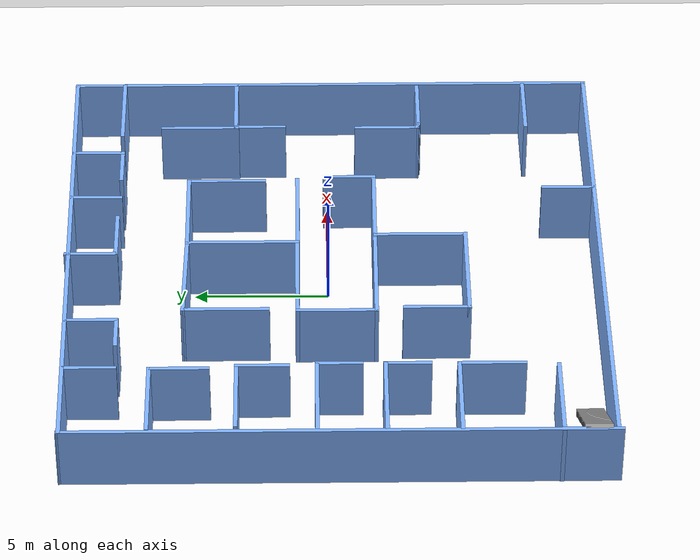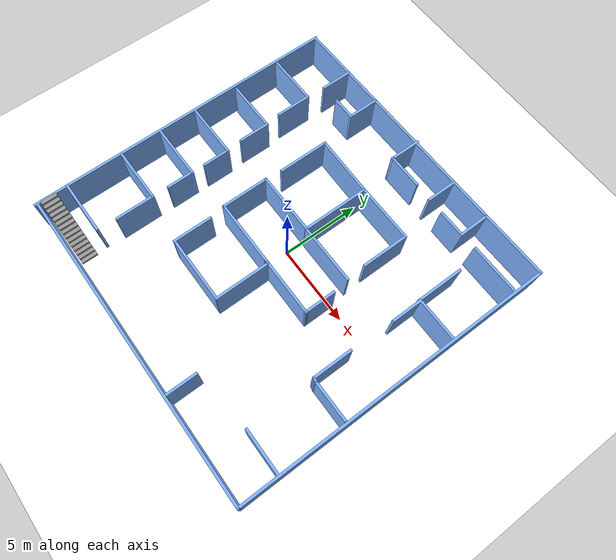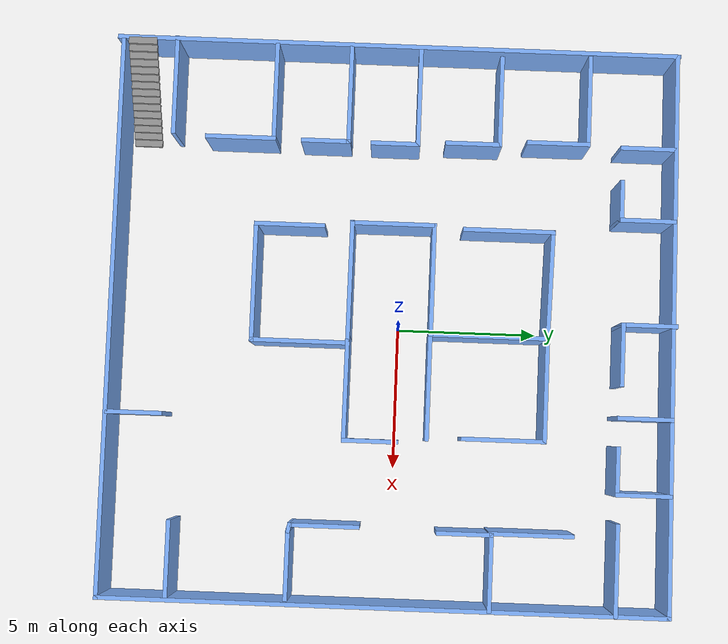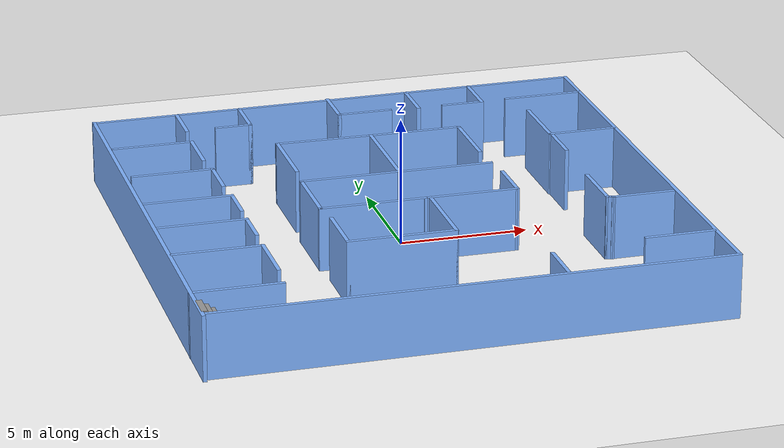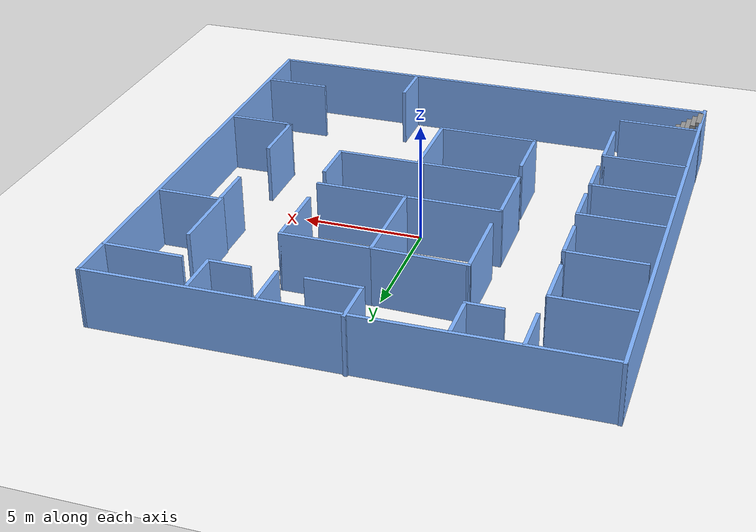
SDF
<sdf version="1.9">
 <world name="hospital">
  <model name="ground_plane">
   <static>true</static>
   <link name="link">
    <collision name="collision">
     <geometry><plane><normal>0 0 1</normal><size>100 100</size></plane></geometry>
     <surface><friction><ode><mu>100</mu><mu2>50</mu2></ode></friction></surface>
    </collision>
    <visual name="visual">
     <cast_shadows>false</cast_shadows>
     <geometry><plane><normal>0 0 1</normal><size>100 100</size></plane></geometry>
     <material><ambient>1 1 1 1</ambient><diffuse>1 1 1 1</diffuse></material>
    </visual>
    <inertial>
     <mass>1</mass>
     <inertia><ixx>1</ixx><ixy>0</ixy><ixz>0</ixz><iyy>1</iyy><iyz>0</iyz><izz>1</izz></inertia>
    </inertial>
   </link>
  </model>
  <model name="hospital_building">
   <pose>-0.088547 -0.253566 0 0 -0 0</pose>
   <link name="Stairs_0">
    <visual name="Stairs_0_Visual_0">
     <pose>-6.49211 -9.17922 0.083333 0 -0 -1.5708</pose>
     <geometry><box><size>1 0.232161 0.166667</size></box></geometry>
     <material>
      <script><uri>file://media/materials/scripts/gazebo.material</uri><name>Gazebo/Grey</name></script>
      <ambient>1 1 1 1</ambient>
     </material>
     <meta><layer>0</layer></meta>
    </visual>
    <collision name="Stairs_0_Collision_0">
     <geometry><box><size>1 0.232161 0.166667</size></box></geometry>
     <pose>-6.49211 -9.17922 0.083333 0 -0 -1.5708</pose>
    </collision>
    <visual name="Stairs_0_Visual_1">
     <pose>-6.72427 -9.17922 0.25 0 -0 -1.5708</pose>
     <geometry><box><size>1 0.232161 0.166667</size></box></geometry>
     <material>
      <script><uri>file://media/materials/scripts/gazebo.material</uri><name>Gazebo/Grey</name></script>
      <ambient>1 1 1 1</ambient>
     </material>
     <meta><layer>0</layer></meta>
    </visual>
    <collision name="Stairs_0_Collision_1">
     <geometry><box><size>1 0.232161 0.166667</size></box></geometry>
     <pose>-6.72427 -9.17922 0.25 0 -0 -1.5708</pose>
    </collision>
    <visual name="Stairs_0_Visual_2">
     <pose>-6.95643 -9.17922 0.416667 0 -0 -1.5708</pose>
     <geometry><box><size>1 0.232161 0.166667</size></box></geometry>
     <material>
      <script><uri>file://media/materials/scripts/gazebo.material</uri><name>Gazebo/Grey</name></script>
      <ambient>1 1 1 1</ambient>
     </material>
     <meta><layer>0</layer></meta>
    </visual>
    <collision name="Stairs_0_Collision_2">
     <geometry><box><size>1 0.232161 0.166667</size></box></geometry>
     <pose>-6.95643 -9.17922 0.416667 0 -0 -1.5708</pose>
    </collision>
    <visual name="Stairs_0_Visual_3">
     <pose>-7.18859 -9.17922 0.583333 0 -0 -1.5708</pose>
     <geometry><box><size>1 0.232161 0.166667</size></box></geometry>
     <material>
      <script><uri>file://media/materials/scripts/gazebo.material</uri><name>Gazebo/Grey</name></script>
      <ambient>1 1 1 1</ambient>
     </material>
     <meta><layer>0</layer></meta>
    </visual>
    <collision name="Stairs_0_Collision_3">
     <geometry><box><size>1 0.232161 0.166667</size></box></geometry>
     <pose>-7.18859 -9.17922 0.583333 0 -0 -1.5708</pose>
    </collision>
    <visual name="Stairs_0_Visual_4">
     <pose>-7.42075 -9.17922 0.75 0 -0 -1.5708</pose>
     <geometry><box><size>1 0.232161 0.166667</size></box></geometry>
     <material>
      <script><uri>file://media/materials/scripts/gazebo.material</uri><name>Gazebo/Grey</name></script>
      <ambient>1 1 1 1</ambient>
     </material>
     <meta><layer>0</layer></meta>
    </visual>
    <collision name="Stairs_0_Collision_4">
     <geometry><box><size>1 0.232161 0.166667</size></box></geometry>
     <pose>-7.42075 -9.17922 0.75 0 -0 -1.5708</pose>
    </collision>
    <visual name="Stairs_0_Visual_5">
     <pose>-7.65291 -9.17922 0.916667 0 -0 -1.5708</pose>
     <geometry><box><size>1 0.232161 0.166667</size></box></geometry>
     <material>
      <script><uri>file://media/materials/scripts/gazebo.material</uri><name>Gazebo/Grey</name></script>
      <ambient>1 1 1 1</ambient>
     </material>
     <meta><layer>0</layer></meta>
    </visual>
    <collision name="Stairs_0_Collision_5">
     <geometry><box><size>1 0.232161 0.166667</size></box></geometry>
     <pose>-7.65291 -9.17922 0.916667 0 -0 -1.5708</pose>
    </collision>
    <visual name="Stairs_0_Visual_6">
     <pose>-7.88507 -9.17922 1.08333 0 -0 -1.5708</pose>
     <geometry><box><size>1 0.232161 0.166667</size></box></geometry>
     <material>
      <script><uri>file://media/materials/scripts/gazebo.material</uri><name>Gazebo/Grey</name></script>
      <ambient>1 1 1 1</ambient>
     </material>
     <meta><layer>0</layer></meta>
    </visual>
    <collision name="Stairs_0_Collision_6">
     <geometry><box><size>1 0.232161 0.166667</size></box></geometry>
     <pose>-7.88507 -9.17922 1.08333 0 -0 -1.5708</pose>
    </collision>
    <visual name="Stairs_0_Visual_7">
     <pose>-8.11724 -9.17922 1.25 0 -0 -1.5708</pose>
     <geometry><box><size>1 0.232161 0.166667</size></box></geometry>
     <material>
      <script><uri>file://media/materials/scripts/gazebo.material</uri><name>Gazebo/Grey</name></script>
      <ambient>1 1 1 1</ambient>
     </material>
     <meta><layer>0</layer></meta>
    </visual>
    <collision name="Stairs_0_Collision_7">
     <geometry><box><size>1 0.232161 0.166667</size></box></geometry>
     <pose>-8.11724 -9.17922 1.25 0 -0 -1.5708</pose>
    </collision>
    <visual name="Stairs_0_Visual_8">
     <pose>-8.3494 -9.17922 1.41667 0 -0 -1.5708</pose>
     <geometry><box><size>1 0.232161 0.166667</size></box></geometry>
     <material>
      <script><uri>file://media/materials/scripts/gazebo.material</uri><name>Gazebo/Grey</name></script>
      <ambient>1 1 1 1</ambient>
     </material>
     <meta><layer>0</layer></meta>
    </visual>
    <collision name="Stairs_0_Collision_8">
     <geometry><box><size>1 0.232161 0.166667</size></box></geometry>
     <pose>-8.3494 -9.17922 1.41667 0 -0 -1.5708</pose>
    </collision>
    <visual name="Stairs_0_Visual_9">
     <pose>-8.58156 -9.17922 1.58333 0 -0 -1.5708</pose>
     <geometry><box><size>1 0.232161 0.166667</size></box></geometry>
     <material>
      <script><uri>file://media/materials/scripts/gazebo.material</uri><name>Gazebo/Grey</name></script>
      <ambient>1 1 1 1</ambient>
     </material>
     <meta><layer>0</layer></meta>
    </visual>
    <collision name="Stairs_0_Collision_9">
     <geometry><box><size>1 0.232161 0.166667</size></box></geometry>
     <pose>-8.58156 -9.17922 1.58333 0 -0 -1.5708</pose>
    </collision>
    <visual name="Stairs_0_Visual_10">
     <pose>-8.81372 -9.17922 1.75 0 -0 -1.5708</pose>
     <geometry><box><size>1 0.232161 0.166667</size></box></geometry>
     <material>
      <script><uri>file://media/materials/scripts/gazebo.material</uri><name>Gazebo/Grey</name></script>
      <ambient>1 1 1 1</ambient>
     </material>
     <meta><layer>0</layer></meta>
    </visual>
    <collision name="Stairs_0_Collision_10">
     <geometry><box><size>1 0.232161 0.166667</size></box></geometry>
     <pose>-8.81372 -9.17922 1.75 0 -0 -1.5708</pose>
    </collision>
    <visual name="Stairs_0_Visual_11">
     <pose>-9.04588 -9.17922 1.91667 0 -0 -1.5708</pose>
     <geometry><box><size>1 0.232161 0.166667</size></box></geometry>
     <material>
      <script><uri>file://media/materials/scripts/gazebo.material</uri><name>Gazebo/Grey</name></script>
      <ambient>1 1 1 1</ambient>
     </material>
     <meta><layer>0</layer></meta>
    </visual>
    <collision name="Stairs_0_Collision_11">
     <geometry><box><size>1 0.232161 0.166667</size></box></geometry>
     <pose>-9.04588 -9.17922 1.91667 0 -0 -1.5708</pose>
    </collision>
    <visual name="Stairs_0_Visual_12">
     <pose>-9.27804 -9.17922 2.08333 0 -0 -1.5708</pose>
     <geometry><box><size>1 0.232161 0.166667</size></box></geometry>
     <material>
      <script><uri>file://media/materials/scripts/gazebo.material</uri><name>Gazebo/Grey</name></script>
      <ambient>1 1 1 1</ambient>
     </material>
     <meta><layer>0</layer></meta>
    </visual>
    <collision name="Stairs_0_Collision_12">
     <geometry><box><size>1 0.232161 0.166667</size></box></geometry>
     <pose>-9.27804 -9.17922 2.08333 0 -0 -1.5708</pose>
    </collision>
    <visual name="Stairs_0_Visual_13">
     <pose>-9.5102 -9.17922 2.25 0 -0 -1.5708</pose>
     <geometry><box><size>1 0.232161 0.166667</size></box></geometry>
     <material>
      <script><uri>file://media/materials/scripts/gazebo.material</uri><name>Gazebo/Grey</name></script>
      <ambient>1 1 1 1</ambient>
     </material>
     <meta><layer>0</layer></meta>
    </visual>
    <collision name="Stairs_0_Collision_13">
     <geometry><box><size>1 0.232161 0.166667</size></box></geometry>
     <pose>-9.5102 -9.17922 2.25 0 -0 -1.5708</pose>
    </collision>
    <visual name="Stairs_0_Visual_14">
     <pose>-9.74236 -9.17922 2.41667 0 -0 -1.5708</pose>
     <geometry><box><size>1 0.232161 0.166667</size></box></geometry>
     <material>
      <script><uri>file://media/materials/scripts/gazebo.material</uri><name>Gazebo/Grey</name></script>
      <ambient>1 1 1 1</ambient>
     </material>
     <meta><layer>0</layer></meta>
    </visual>
    <collision name="Stairs_0_Collision_14">
     <geometry><box><size>1 0.232161 0.166667</size></box></geometry>
     <pose>-9.74236 -9.17922 2.41667 0 -0 -1.5708</pose>
    </collision>
    <inertial>
     <mass>1</mass>
     <inertia><ixx>1</ixx><ixy>0</ixy><ixz>0</ixz><iyy>1</iyy><iyz>0</iyz><izz>1</izz></inertia>
    </inertial>
   </link>
   <link name="Wall_101">
    <collision name="Wall_101_Collision">
     <geometry><box><size>3 0.15 2.5</size></box></geometry>
     <pose>0 0 1.25 0 -0 0</pose>
    </collision>
    <visual name="Wall_101_Visual">
     <pose>0 0 1.25 0 -0 0</pose>
     <geometry><box><size>3 0.15 2.5</size></box></geometry>
     <material>
      <ambient>0.5 0.7 1 1</ambient>
      <diffuse>0.5 0.7 1 1</diffuse>
      <specular>0.2 0.2 0.25 1</specular>
     </material>
     <meta><layer>0</layer></meta>
    </visual>
    <pose>-3.51129 -0.021415 0 0 0 -1.5708</pose>
    <inertial>
     <mass>1</mass>
     <inertia><ixx>1</ixx><ixy>0</ixy><ixz>0</ixz><iyy>1</iyy><iyz>0</iyz><izz>1</izz></inertia>
    </inertial>
   </link>
   <link name="Wall_103">
    <collision name="Wall_103_Collision">
     <geometry><box><size>3.75103 0.15 2.5</size></box></geometry>
     <pose>0 0 1.25 0 -0 0</pose>
    </collision>
    <visual name="Wall_103_Visual">
     <pose>0 0 1.25 0 -0 0</pose>
     <geometry><box><size>3.75103 0.15 2.5</size></box></geometry>
     <material>
      <ambient>0.5 0.7 1 1</ambient>
      <diffuse>0.5 0.7 1 1</diffuse>
      <specular>0.2 0.2 0.25 1</specular>
     </material>
     <meta><layer>0</layer></meta>
    </visual>
    <pose>2.34123 -1.50562 0 0 0 -0.002751</pose>
    <inertial>
     <mass>1</mass>
     <inertia><ixx>1</ixx><ixy>0</ixy><ixz>0</ixz><iyy>1</iyy><iyz>0</iyz><izz>1</izz></inertia>
    </inertial>
   </link>
   <link name="Wall_104">
    <collision name="Wall_104_Collision">
     <geometry><box><size>2 0.15 2.5</size></box></geometry>
     <pose>0 0 1.25 0 -0 0</pose>
    </collision>
    <visual name="Wall_104_Visual">
     <pose>0 0 1.25 0 -0 0</pose>
     <geometry><box><size>2 0.15 2.5</size></box></geometry>
     <material>
      <ambient>0.5 0.7 1 1</ambient>
      <diffuse>0.5 0.7 1 1</diffuse>
      <specular>0.2 0.2 0.25 1</specular>
     </material>
     <meta><layer>0</layer></meta>
    </visual>
    <pose>4.14174 -0.585575 0 0 -0 1.5708</pose>
    <inertial>
     <mass>1</mass>
     <inertia><ixx>1</ixx><ixy>0</ixy><ixz>0</ixz><iyy>1</iyy><iyz>0</iyz><izz>1</izz></inertia>
    </inertial>
   </link>
   <link name="Wall_106">
    <collision name="Wall_106_Collision">
     <geometry><box><size>1.75 0.15 2.5</size></box></geometry>
     <pose>0 0 1.25 0 -0 0</pose>
    </collision>
    <visual name="Wall_106_Visual">
     <pose>0 0 1.25 0 -0 0</pose>
     <geometry><box><size>1.75 0.15 2.5</size></box></geometry>
     <material>
      <ambient>0.5 0.7 1 1</ambient>
      <diffuse>0.5 0.7 1 1</diffuse>
      <specular>0.2 0.2 0.25 1</specular>
     </material>
     <meta><layer>0</layer></meta>
    </visual>
    <pose>-6.38591 -2.54355 0 0 0 -1.5708</pose>
    <inertial>
     <mass>1</mass>
     <inertia><ixx>1</ixx><ixy>0</ixy><ixz>0</ixz><iyy>1</iyy><iyz>0</iyz><izz>1</izz></inertia>
    </inertial>
   </link>
   <link name="Wall_110">
    <collision name="Wall_110_Collision">
     <geometry><box><size>2 0.15 2.5</size></box></geometry>
     <pose>0 0 1.25 0 -0 0</pose>
    </collision>
    <visual name="Wall_110_Visual">
     <pose>0 0 1.25 0 -0 0</pose>
     <geometry><box><size>2 0.15 2.5</size></box></geometry>
     <material>
      <ambient>0.5 0.7 1 1</ambient>
      <diffuse>0.5 0.7 1 1</diffuse>
      <specular>0.2 0.2 0.25 1</specular>
     </material>
     <meta><layer>0</layer></meta>
    </visual>
    <pose>5.67844 9.00549 0 0 -0 1.5708</pose>
    <inertial>
     <mass>1</mass>
     <inertia><ixx>1</ixx><ixy>0</ixy><ixz>0</ixz><iyy>1</iyy><iyz>0</iyz><izz>1</izz></inertia>
    </inertial>
   </link>
   <link name="Wall_112">
    <collision name="Wall_112_Collision">
     <geometry><box><size>3.5 0.15 2.5</size></box></geometry>
     <pose>0 0 1.25 0 -0 0</pose>
    </collision>
    <visual name="Wall_112_Visual">
     <pose>0 0 1.25 0 -0 0</pose>
     <geometry><box><size>3.5 0.15 2.5</size></box></geometry>
     <material>
      <ambient>0.5 0.7 1 1</ambient>
      <diffuse>0.5 0.7 1 1</diffuse>
      <specular>0.2 0.2 0.25 1</specular>
     </material>
     <meta><layer>0</layer></meta>
    </visual>
    <pose>0.73884 -3.1988 0 0 -0 1.5708</pose>
    <inertial>
     <mass>1</mass>
     <inertia><ixx>1</ixx><ixy>0</ixy><ixz>0</ixz><iyy>1</iyy><iyz>0</iyz><izz>1</izz></inertia>
    </inertial>
   </link>
   <link name="Wall_12">
    <collision name="Wall_12_Collision">
     <geometry><box><size>20 0.15 2.5</size></box></geometry>
     <pose>0 0 1.25 0 -0 0</pose>
    </collision>
    <visual name="Wall_12_Visual">
     <pose>0 0 1.25 0 -0 0</pose>
     <geometry><box><size>20 0.15 2.5</size></box></geometry>
     <material>
      <ambient>0.5 0.7 1 1</ambient>
      <diffuse>0.5 0.7 1 1</diffuse>
      <specular>0.2 0.2 0.25 1</specular>
     </material>
     <meta><layer>0</layer></meta>
    </visual>
    <pose>-9.86242 -0.07017 0 0 -0 1.5708</pose>
    <inertial>
     <mass>1</mass>
     <inertia><ixx>1</ixx><ixy>0</ixy><ixz>0</ixz><iyy>1</iyy><iyz>0</iyz><izz>1</izz></inertia>
    </inertial>
   </link>
   <link name="Wall_13">
    <collision name="Wall_13_Collision">
     <geometry><box><size>19.8871 0.15 2.5</size></box></geometry>
     <pose>0 0 1.25 0 -0 0</pose>
    </collision>
    <visual name="Wall_13_Visual">
     <pose>0 0 1.25 0 -0 0</pose>
     <geometry><box><size>19.8871 0.15 2.5</size></box></geometry>
     <material>
      <ambient>0.5 0.7 1 1</ambient>
      <diffuse>0.5 0.7 1 1</diffuse>
      <specular>0.2 0.2 0.25 1</specular>
     </material>
     <meta><layer>0</layer></meta>
    </visual>
    <pose>0.005865 9.90334 0 0 -0 0.009016</pose>
    <inertial>
     <mass>1</mass>
     <inertia><ixx>1</ixx><ixy>0</ixy><ixz>0</ixz><iyy>1</iyy><iyz>0</iyz><izz>1</izz></inertia>
    </inertial>
   </link>
   <link name="Wall_16">
    <collision name="Wall_16_Collision">
     <geometry><box><size>20 0.15 2.5</size></box></geometry>
     <pose>0 0 1.25 0 -0 0</pose>
    </collision>
    <visual name="Wall_16_Visual">
     <pose>0 0 1.25 0 -0 0</pose>
     <geometry><box><size>20 0.15 2.5</size></box></geometry>
     <material>
      <ambient>0.5 0.7 1 1</ambient>
      <diffuse>0.5 0.7 1 1</diffuse>
      <specular>0.2 0.2 0.25 1</specular>
     </material>
     <meta><layer>0</layer></meta>
    </visual>
    <pose>9.87415 0.067315 0 0 0 -1.5708</pose>
    <inertial>
     <mass>1</mass>
     <inertia><ixx>1</ixx><ixy>0</ixy><ixz>0</ixz><iyy>1</iyy><iyz>0</iyz><izz>1</izz></inertia>
    </inertial>
   </link>
   <link name="Wall_17">
    <collision name="Wall_17_Collision">
     <geometry><box><size>19.75 0.15 2.5</size></box></geometry>
     <pose>0 0 1.25 0 -0 0</pose>
    </collision>
    <visual name="Wall_17_Visual">
     <pose>0 0 1.25 0 -0 0</pose>
     <geometry><box><size>19.75 0.15 2.5</size></box></geometry>
     <material>
      <ambient>0.5 0.7 1 1</ambient>
      <diffuse>0.5 0.7 1 1</diffuse>
      <specular>0.2 0.2 0.25 1</specular>
     </material>
     <meta><layer>0</layer></meta>
    </visual>
    <pose>0.074153 -9.85769 0 0 -0 3.14159</pose>
    <inertial>
     <mass>1</mass>
     <inertia><ixx>1</ixx><ixy>0</ixy><ixz>0</ixz><iyy>1</iyy><iyz>0</iyz><izz>1</izz></inertia>
    </inertial>
   </link>
   <link name="Wall_19">
    <collision name="Wall_19_Collision">
     <geometry><box><size>3.5 0.15 2.5</size></box></geometry>
     <pose>0 0 1.25 0 -0 0</pose>
    </collision>
    <visual name="Wall_19_Visual">
     <pose>0 0 1.25 0 -0 0</pose>
     <geometry><box><size>3.5 0.15 2.5</size></box></geometry>
     <material>
      <ambient>0.5 0.7 1 1</ambient>
      <diffuse>0.5 0.7 1 1</diffuse>
      <specular>0.2 0.2 0.25 1</specular>
     </material>
     <meta><layer>0</layer></meta>
    </visual>
    <pose>-8.19966 -7.9519 0 0 -0 0</pose>
    <inertial>
     <mass>1</mass>
     <inertia><ixx>1</ixx><ixy>0</ixy><ixz>0</ixz><iyy>1</iyy><iyz>0</iyz><izz>1</izz></inertia>
    </inertial>
   </link>
   <link name="Wall_22">
    <collision name="Wall_22_Collision">
     <geometry><box><size>3.5 0.15 2.5</size></box></geometry>
     <pose>0 0 1.25 0 -0 0</pose>
    </collision>
    <visual name="Wall_22_Visual">
     <pose>0 0 1.25 0 -0 0</pose>
     <geometry><box><size>3.5 0.15 2.5</size></box></geometry>
     <material>
      <ambient>0.5 0.7 1 1</ambient>
      <diffuse>0.5 0.7 1 1</diffuse>
      <specular>0.2 0.2 0.25 1</specular>
     </material>
     <meta><layer>0</layer></meta>
    </visual>
    <pose>-8.07952 -4.3898 0 0 -0 0</pose>
    <inertial>
     <mass>1</mass>
     <inertia><ixx>1</ixx><ixy>0</ixy><ixz>0</ixz><iyy>1</iyy><iyz>0</iyz><izz>1</izz></inertia>
    </inertial>
   </link>
   <link name="Wall_23">
    <collision name="Wall_23_Collision">
     <geometry><box><size>2.5 0.15 2.5</size></box></geometry>
     <pose>0 0 1.25 0 -0 0</pose>
    </collision>
    <visual name="Wall_23_Visual">
     <pose>0 0 1.25 0 -0 0</pose>
     <geometry><box><size>2.5 0.15 2.5</size></box></geometry>
     <material>
      <ambient>0.5 0.7 1 1</ambient>
      <diffuse>0.5 0.7 1 1</diffuse>
      <specular>0.2 0.2 0.25 1</specular>
     </material>
     <meta><layer>0</layer></meta>
    </visual>
    <pose>-6.40452 -5.5648 0 0 0 -1.5708</pose>
    <inertial>
     <mass>1</mass>
     <inertia><ixx>1</ixx><ixy>0</ixy><ixz>0</ixz><iyy>1</iyy><iyz>0</iyz><izz>1</izz></inertia>
    </inertial>
   </link>
   <link name="Wall_25">
    <collision name="Wall_25_Collision">
     <geometry><box><size>2.5 0.15 2.5</size></box></geometry>
     <pose>0 0 1.25 0 -0 0</pose>
    </collision>
    <visual name="Wall_25_Visual">
     <pose>0 0 1.25 0 -0 0</pose>
     <geometry><box><size>2.5 0.15 2.5</size></box></geometry>
     <material>
      <ambient>0.5 0.7 1 1</ambient>
      <diffuse>0.5 0.7 1 1</diffuse>
      <specular>0.2 0.2 0.25 1</specular>
     </material>
     <meta><layer>0</layer></meta>
    </visual>
    <pose>-3.36116 -3.6988 0 0 0 -1.5708</pose>
    <inertial>
     <mass>1</mass>
     <inertia><ixx>1</ixx><ixy>0</ixy><ixz>0</ixz><iyy>1</iyy><iyz>0</iyz><izz>1</izz></inertia>
    </inertial>
   </link>
   <link name="Wall_26">
    <collision name="Wall_26_Collision">
     <geometry><box><size>4.25 0.15 2.5</size></box></geometry>
     <pose>0 0 1.25 0 -0 0</pose>
    </collision>
    <visual name="Wall_26_Visual">
     <pose>0 0 1.25 0 -0 0</pose>
     <geometry><box><size>4.25 0.15 2.5</size></box></geometry>
     <material>
      <ambient>0.5 0.7 1 1</ambient>
      <diffuse>0.5 0.7 1 1</diffuse>
      <specular>0.2 0.2 0.25 1</specular>
     </material>
     <meta><layer>0</layer></meta>
    </visual>
    <pose>-1.31116 -4.8738 0 0 -0 0</pose>
    <inertial>
     <mass>1</mass>
     <inertia><ixx>1</ixx><ixy>0</ixy><ixz>0</ixz><iyy>1</iyy><iyz>0</iyz><izz>1</izz></inertia>
    </inertial>
   </link>
   <link name="Wall_31">
    <collision name="Wall_31_Collision">
     <geometry><box><size>4.19712 0.15 2.5</size></box></geometry>
     <pose>0 0 1.25 0 -0 0</pose>
    </collision>
    <visual name="Wall_31_Visual">
     <pose>0 0 1.25 0 -0 0</pose>
     <geometry><box><size>4.19712 0.15 2.5</size></box></geometry>
     <material>
      <ambient>0.5 0.7 1 1</ambient>
      <diffuse>0.5 0.7 1 1</diffuse>
      <specular>0.2 0.2 0.25 1</specular>
     </material>
     <meta><layer>0</layer></meta>
    </visual>
    <pose>-1.49289 -1.49406 0 0 -0 3.13833</pose>
    <inertial>
     <mass>1</mass>
     <inertia><ixx>1</ixx><ixy>0</ixy><ixz>0</ixz><iyy>1</iyy><iyz>0</iyz><izz>1</izz></inertia>
    </inertial>
   </link>
   <link name="Wall_33">
    <collision name="Wall_33_Collision">
     <geometry><box><size>3.5 0.15 2.5</size></box></geometry>
     <pose>0 0 1.25 0 -0 0</pose>
    </collision>
    <visual name="Wall_33_Visual">
     <pose>0 0 1.25 0 -0 0</pose>
     <geometry><box><size>3.5 0.15 2.5</size></box></geometry>
     <material>
      <ambient>0.5 0.7 1 1</ambient>
      <diffuse>0.5 0.7 1 1</diffuse>
      <specular>0.2 0.2 0.25 1</specular>
     </material>
     <meta><layer>0</layer></meta>
    </visual>
    <pose>-8.06091 -1.74355 0 0 -0 0</pose>
    <inertial>
     <mass>1</mass>
     <inertia><ixx>1</ixx><ixy>0</ixy><ixz>0</ixz><iyy>1</iyy><iyz>0</iyz><izz>1</izz></inertia>
    </inertial>
   </link>
   <link name="Wall_39">
    <collision name="Wall_39_Collision">
     <geometry><box><size>3.5 0.15 2.5</size></box></geometry>
     <pose>0 0 1.25 0 -0 0</pose>
    </collision>
    <visual name="Wall_39_Visual">
     <pose>0 0 1.25 0 -0 0</pose>
     <geometry><box><size>3.5 0.15 2.5</size></box></geometry>
     <material>
      <ambient>0.5 0.7 1 1</ambient>
      <diffuse>0.5 0.7 1 1</diffuse>
      <specular>0.2 0.2 0.25 1</specular>
     </material>
     <meta><layer>0</layer></meta>
    </visual>
    <pose>-8.04717 0.717532 0 0 -0 0</pose>
    <inertial>
     <mass>1</mass>
     <inertia><ixx>1</ixx><ixy>0</ixy><ixz>0</ixz><iyy>1</iyy><iyz>0</iyz><izz>1</izz></inertia>
    </inertial>
   </link>
   <link name="Wall_40">
    <collision name="Wall_40_Collision">
     <geometry><box><size>1.75 0.15 2.5</size></box></geometry>
     <pose>0 0 1.25 0 -0 0</pose>
    </collision>
    <visual name="Wall_40_Visual">
     <pose>0 0 1.25 0 -0 0</pose>
     <geometry><box><size>1.75 0.15 2.5</size></box></geometry>
     <material>
      <ambient>0.5 0.7 1 1</ambient>
      <diffuse>0.5 0.7 1 1</diffuse>
      <specular>0.2 0.2 0.25 1</specular>
     </material>
     <meta><layer>0</layer></meta>
    </visual>
    <pose>-6.37217 -0.082468 0 0 0 -1.5708</pose>
    <inertial>
     <mass>1</mass>
     <inertia><ixx>1</ixx><ixy>0</ixy><ixz>0</ixz><iyy>1</iyy><iyz>0</iyz><izz>1</izz></inertia>
    </inertial>
   </link>
   <link name="Wall_42">
    <collision name="Wall_42_Collision">
     <geometry><box><size>3.25 0.15 2.5</size></box></geometry>
     <pose>0 0 1.25 0 -0 0</pose>
    </collision>
    <visual name="Wall_42_Visual">
     <pose>0 0 1.25 0 -0 0</pose>
     <geometry><box><size>3.25 0.15 2.5</size></box></geometry>
     <material>
      <ambient>0.5 0.7 1 1</ambient>
      <diffuse>0.5 0.7 1 1</diffuse>
      <specular>0.2 0.2 0.25 1</specular>
     </material>
     <meta><layer>0</layer></meta>
    </visual>
    <pose>-8.01697 3.60516 0 0 -0 0</pose>
    <inertial>
     <mass>1</mass>
     <inertia><ixx>1</ixx><ixy>0</ixy><ixz>0</ixz><iyy>1</iyy><iyz>0</iyz><izz>1</izz></inertia>
    </inertial>
   </link>
   <link name="Wall_43">
    <collision name="Wall_43_Collision">
     <geometry><box><size>2 0.15 2.5</size></box></geometry>
     <pose>0 0 1.25 0 -0 0</pose>
    </collision>
    <visual name="Wall_43_Visual">
     <pose>0 0 1.25 0 -0 0</pose>
     <geometry><box><size>2 0.15 2.5</size></box></geometry>
     <material>
      <ambient>0.5 0.7 1 1</ambient>
      <diffuse>0.5 0.7 1 1</diffuse>
      <specular>0.2 0.2 0.25 1</specular>
     </material>
     <meta><layer>0</layer></meta>
    </visual>
    <pose>-6.46697 2.68016 0 0 0 -1.5708</pose>
    <inertial>
     <mass>1</mass>
     <inertia><ixx>1</ixx><ixy>0</ixy><ixz>0</ixz><iyy>1</iyy><iyz>0</iyz><izz>1</izz></inertia>
    </inertial>
   </link>
   <link name="Wall_45">
    <collision name="Wall_45_Collision">
     <geometry><box><size>3.25 0.15 2.5</size></box></geometry>
     <pose>0 0 1.25 0 -0 0</pose>
    </collision>
    <visual name="Wall_45_Visual">
     <pose>0 0 1.25 0 -0 0</pose>
     <geometry><box><size>3.25 0.15 2.5</size></box></geometry>
     <material>
      <ambient>0.5 0.7 1 1</ambient>
      <diffuse>0.5 0.7 1 1</diffuse>
      <specular>0.2 0.2 0.25 1</specular>
     </material>
     <meta><layer>0</layer></meta>
    </visual>
    <pose>-8.14339 6.73323 0 0 -0 0</pose>
    <inertial>
     <mass>1</mass>
     <inertia><ixx>1</ixx><ixy>0</ixy><ixz>0</ixz><iyy>1</iyy><iyz>0</iyz><izz>1</izz></inertia>
    </inertial>
   </link>
   <link name="Wall_46">
    <collision name="Wall_46_Collision">
     <geometry><box><size>2.25 0.15 2.5</size></box></geometry>
     <pose>0 0 1.25 0 -0 0</pose>
    </collision>
    <visual name="Wall_46_Visual">
     <pose>0 0 1.25 0 -0 0</pose>
     <geometry><box><size>2.25 0.15 2.5</size></box></geometry>
     <material>
      <ambient>0.5 0.7 1 1</ambient>
      <diffuse>0.5 0.7 1 1</diffuse>
      <specular>0.2 0.2 0.25 1</specular>
     </material>
     <meta><layer>0</layer></meta>
    </visual>
    <pose>-6.59339 5.68323 0 0 0 -1.5708</pose>
    <inertial>
     <mass>1</mass>
     <inertia><ixx>1</ixx><ixy>0</ixy><ixz>0</ixz><iyy>1</iyy><iyz>0</iyz><izz>1</izz></inertia>
    </inertial>
   </link>
   <link name="Wall_50">
    <collision name="Wall_50_Collision">
     <geometry><box><size>2 0.15 2.5</size></box></geometry>
     <pose>0 0 1.25 0 -0 0</pose>
    </collision>
    <visual name="Wall_50_Visual">
     <pose>0 0 1.25 0 -0 0</pose>
     <geometry><box><size>2 0.15 2.5</size></box></geometry>
     <material>
      <ambient>0.5 0.7 1 1</ambient>
      <diffuse>0.5 0.7 1 1</diffuse>
      <specular>0.2 0.2 0.25 1</specular>
     </material>
     <meta><layer>0</layer></meta>
    </visual>
    <pose>-6.51867 8.88642 0 0 0 -1.5708</pose>
    <inertial>
     <mass>1</mass>
     <inertia><ixx>1</ixx><ixy>0</ixy><ixz>0</ixz><iyy>1</iyy><iyz>0</iyz><izz>1</izz></inertia>
    </inertial>
   </link>
   <link name="Wall_52">
    <collision name="Wall_52_Collision">
     <geometry><box><size>1.5 0.15 2.5</size></box></geometry>
     <pose>0 0 1.25 0 -0 0</pose>
    </collision>
    <visual name="Wall_52_Visual">
     <pose>0 0 1.25 0 -0 0</pose>
     <geometry><box><size>1.5 0.15 2.5</size></box></geometry>
     <material>
      <ambient>0.5 0.7 1 1</ambient>
      <diffuse>0.5 0.7 1 1</diffuse>
      <specular>0.2 0.2 0.25 1</specular>
     </material>
     <meta><layer>0</layer></meta>
    </visual>
    <pose>-4.62878 7.98254 0 0 -0 0</pose>
    <inertial>
     <mass>1</mass>
     <inertia><ixx>1</ixx><ixy>0</ixy><ixz>0</ixz><iyy>1</iyy><iyz>0</iyz><izz>1</izz></inertia>
    </inertial>
   </link>
   <link name="Wall_53">
    <collision name="Wall_53_Collision">
     <geometry><box><size>2 0.15 2.5</size></box></geometry>
     <pose>0 0 1.25 0 -0 0</pose>
    </collision>
    <visual name="Wall_53_Visual">
     <pose>0 0 1.25 0 -0 0</pose>
     <geometry><box><size>2 0.15 2.5</size></box></geometry>
     <material>
      <ambient>0.5 0.7 1 1</ambient>
      <diffuse>0.5 0.7 1 1</diffuse>
      <specular>0.2 0.2 0.25 1</specular>
     </material>
     <meta><layer>0</layer></meta>
    </visual>
    <pose>-3.95378 8.90754 0 0 -0 1.5708</pose>
    <inertial>
     <mass>1</mass>
     <inertia><ixx>1</ixx><ixy>0</ixy><ixz>0</ixz><iyy>1</iyy><iyz>0</iyz><izz>1</izz></inertia>
    </inertial>
   </link>
   <link name="Wall_55">
    <collision name="Wall_55_Collision">
     <geometry><box><size>2 0.15 2.5</size></box></geometry>
     <pose>0 0 1.25 0 -0 0</pose>
    </collision>
    <visual name="Wall_55_Visual">
     <pose>0 0 1.25 0 -0 0</pose>
     <geometry><box><size>2 0.15 2.5</size></box></geometry>
     <material>
      <ambient>0.5 0.7 1 1</ambient>
      <diffuse>0.5 0.7 1 1</diffuse>
      <specular>0.2 0.2 0.25 1</specular>
     </material>
     <meta><layer>0</layer></meta>
    </visual>
    <pose>-0.257575 9.07017 0 0 0 -1.5708</pose>
    <inertial>
     <mass>1</mass>
     <inertia><ixx>1</ixx><ixy>0</ixy><ixz>0</ixz><iyy>1</iyy><iyz>0</iyz><izz>1</izz></inertia>
    </inertial>
   </link>
   <link name="Wall_56">
    <collision name="Wall_56_Collision">
     <geometry><box><size>2.25 0.15 2.5</size></box></geometry>
     <pose>0 0 1.25 0 -0 0</pose>
    </collision>
    <visual name="Wall_56_Visual">
     <pose>0 0 1.25 0 -0 0</pose>
     <geometry><box><size>2.25 0.15 2.5</size></box></geometry>
     <material>
      <ambient>0.5 0.7 1 1</ambient>
      <diffuse>0.5 0.7 1 1</diffuse>
      <specular>0.2 0.2 0.25 1</specular>
     </material>
     <meta><layer>0</layer></meta>
    </visual>
    <pose>0.792425 8.14517 0 0 -0 0</pose>
    <inertial>
     <mass>1</mass>
     <inertia><ixx>1</ixx><ixy>0</ixy><ixz>0</ixz><iyy>1</iyy><iyz>0</iyz><izz>1</izz></inertia>
    </inertial>
   </link>
   <link name="Wall_58">
    <collision name="Wall_58_Collision">
     <geometry><box><size>2 0.15 2.5</size></box></geometry>
     <pose>0 0 1.25 0 -0 0</pose>
    </collision>
    <visual name="Wall_58_Visual">
     <pose>0 0 1.25 0 -0 0</pose>
     <geometry><box><size>2 0.15 2.5</size></box></geometry>
     <material>
      <ambient>0.5 0.7 1 1</ambient>
      <diffuse>0.5 0.7 1 1</diffuse>
      <specular>0.2 0.2 0.25 1</specular>
     </material>
     <meta><layer>0</layer></meta>
    </visual>
    <pose>3.01457 9.00454 0 0 0 -1.5708</pose>
    <inertial>
     <mass>1</mass>
     <inertia><ixx>1</ixx><ixy>0</ixy><ixz>0</ixz><iyy>1</iyy><iyz>0</iyz><izz>1</izz></inertia>
    </inertial>
   </link>
   <link name="Wall_64">
    <collision name="Wall_64_Collision">
     <geometry><box><size>3.25 0.15 2.5</size></box></geometry>
     <pose>0 0 1.25 0 -0 0</pose>
    </collision>
    <visual name="Wall_64_Visual">
     <pose>0 0 1.25 0 -0 0</pose>
     <geometry><box><size>3.25 0.15 2.5</size></box></geometry>
     <material>
      <ambient>0.5 0.7 1 1</ambient>
      <diffuse>0.5 0.7 1 1</diffuse>
      <specular>0.2 0.2 0.25 1</specular>
     </material>
     <meta><layer>0</layer></meta>
    </visual>
    <pose>-3.41825 4.04074 0 0 0 -1.5708</pose>
    <inertial>
     <mass>1</mass>
     <inertia><ixx>1</ixx><ixy>0</ixy><ixz>0</ixz><iyy>1</iyy><iyz>0</iyz><izz>1</izz></inertia>
    </inertial>
   </link>
   <link name="Wall_66">
    <collision name="Wall_66_Collision">
     <geometry><box><size>4 0.15 2.5</size></box></geometry>
     <pose>0 0 1.25 0 -0 0</pose>
    </collision>
    <visual name="Wall_66_Visual">
     <pose>0 0 1.25 0 -0 0</pose>
     <geometry><box><size>4 0.15 2.5</size></box></geometry>
     <material>
      <ambient>0.5 0.7 1 1</ambient>
      <diffuse>0.5 0.7 1 1</diffuse>
      <specular>0.2 0.2 0.25 1</specular>
     </material>
     <meta><layer>0</layer></meta>
    </visual>
    <pose>-1.58629 1.40359 0 0 -0 0</pose>
    <inertial>
     <mass>1</mass>
     <inertia><ixx>1</ixx><ixy>0</ixy><ixz>0</ixz><iyy>1</iyy><iyz>0</iyz><izz>1</izz></inertia>
    </inertial>
   </link>
   <link name="Wall_67">
    <collision name="Wall_67_Collision">
     <geometry><box><size>4.25 0.15 2.5</size></box></geometry>
     <pose>0 0 1.25 0 -0 0</pose>
    </collision>
    <visual name="Wall_67_Visual">
     <pose>0 0 1.25 0 -0 0</pose>
     <geometry><box><size>4.25 0.15 2.5</size></box></geometry>
     <material>
      <ambient>0.5 0.7 1 1</ambient>
      <diffuse>0.5 0.7 1 1</diffuse>
      <specular>0.2 0.2 0.25 1</specular>
     </material>
     <meta><layer>0</layer></meta>
    </visual>
    <pose>0.338707 3.45358 0 0 -0 1.5708</pose>
    <inertial>
     <mass>1</mass>
     <inertia><ixx>1</ixx><ixy>0</ixy><ixz>0</ixz><iyy>1</iyy><iyz>0</iyz><izz>1</izz></inertia>
    </inertial>
   </link>
   <link name="Wall_68">
    <collision name="Wall_68_Collision">
     <geometry><box><size>3.90796 0.15 2.5</size></box></geometry>
     <pose>0 0 1.25 0 -0 0</pose>
    </collision>
    <visual name="Wall_68_Visual">
     <pose>0 0 1.25 0 -0 0</pose>
     <geometry><box><size>3.90796 0.15 2.5</size></box></geometry>
     <material>
      <ambient>0.5 0.7 1 1</ambient>
      <diffuse>0.5 0.7 1 1</diffuse>
      <specular>0.2 0.2 0.25 1</specular>
     </material>
     <meta><layer>0</layer></meta>
    </visual>
    <pose>-1.53977 5.54716 0 0 -0 3.1184</pose>
    <inertial>
     <mass>1</mass>
     <inertia><ixx>1</ixx><ixy>0</ixy><ixz>0</ixz><iyy>1</iyy><iyz>0</iyz><izz>1</izz></inertia>
    </inertial>
   </link>
   <link name="Wall_72">
    <collision name="Wall_72_Collision">
     <geometry><box><size>1.75 0.15 2.5</size></box></geometry>
     <pose>0 0 1.25 0 -0 0</pose>
    </collision>
    <visual name="Wall_72_Visual">
     <pose>0 0 1.25 0 -0 0</pose>
     <geometry><box><size>1.75 0.15 2.5</size></box></geometry>
     <material>
      <ambient>0.5 0.7 1 1</ambient>
      <diffuse>0.5 0.7 1 1</diffuse>
      <specular>0.2 0.2 0.25 1</specular>
     </material>
     <meta><layer>0</layer></meta>
    </visual>
    <pose>4.87844 8.08048 0 0 -0 3.14159</pose>
    <inertial>
     <mass>1</mass>
     <inertia><ixx>1</ixx><ixy>0</ixy><ixz>0</ixz><iyy>1</iyy><iyz>0</iyz><izz>1</izz></inertia>
    </inertial>
   </link>
   <link name="Wall_74">
    <collision name="Wall_74_Collision">
     <geometry><box><size>3.25 0.15 2.5</size></box></geometry>
     <pose>0 0 1.25 0 -0 0</pose>
    </collision>
    <visual name="Wall_74_Visual">
     <pose>0 0 1.25 0 -0 0</pose>
     <geometry><box><size>3.25 0.15 2.5</size></box></geometry>
     <material>
      <ambient>0.5 0.7 1 1</ambient>
      <diffuse>0.5 0.7 1 1</diffuse>
      <specular>0.2 0.2 0.25 1</specular>
     </material>
     <meta><layer>0</layer></meta>
    </visual>
    <pose>8.30354 8.13167 0 0 -0 0</pose>
    <inertial>
     <mass>1</mass>
     <inertia><ixx>1</ixx><ixy>0</ixy><ixz>0</ixz><iyy>1</iyy><iyz>0</iyz><izz>1</izz></inertia>
    </inertial>
   </link>
   <link name="Wall_76">
    <collision name="Wall_76_Collision">
     <geometry><box><size>3 0.15 2.5</size></box></geometry>
     <pose>0 0 1.25 0 -0 0</pose>
    </collision>
    <visual name="Wall_76_Visual">
     <pose>0 0 1.25 0 -0 0</pose>
     <geometry><box><size>3 0.15 2.5</size></box></geometry>
     <material>
      <ambient>0.5 0.7 1 1</ambient>
      <diffuse>0.5 0.7 1 1</diffuse>
      <specular>0.2 0.2 0.25 1</specular>
     </material>
     <meta><layer>0</layer></meta>
    </visual>
    <pose>7.18288 5.14061 0 0 0 -1.5708</pose>
    <inertial>
     <mass>1</mass>
     <inertia><ixx>1</ixx><ixy>0</ixy><ixz>0</ixz><iyy>1</iyy><iyz>0</iyz><izz>1</izz></inertia>
    </inertial>
   </link>
   <link name="Wall_78">
    <collision name="Wall_78_Collision">
     <geometry><box><size>2.75 0.15 2.5</size></box></geometry>
     <pose>0 0 1.25 0 -0 0</pose>
    </collision>
    <visual name="Wall_78_Visual">
     <pose>0 0 1.25 0 -0 0</pose>
     <geometry><box><size>2.75 0.15 2.5</size></box></geometry>
     <material>
      <ambient>0.5 0.7 1 1</ambient>
      <diffuse>0.5 0.7 1 1</diffuse>
      <specular>0.2 0.2 0.25 1</specular>
     </material>
     <meta><layer>0</layer></meta>
    </visual>
    <pose>8.53055 3.75819 0 0 -0 0</pose>
    <inertial>
     <mass>1</mass>
     <inertia><ixx>1</ixx><ixy>0</ixy><ixz>0</ixz><iyy>1</iyy><iyz>0</iyz><izz>1</izz></inertia>
    </inertial>
   </link>
   <link name="Wall_80">
    <collision name="Wall_80_Collision">
     <geometry><box><size>2 0.15 2.5</size></box></geometry>
     <pose>0 0 1.25 0 -0 0</pose>
    </collision>
    <visual name="Wall_80_Visual">
     <pose>0 0 1.25 0 -0 0</pose>
     <geometry><box><size>2 0.15 2.5</size></box></geometry>
     <material>
      <ambient>0.5 0.7 1 1</ambient>
      <diffuse>0.5 0.7 1 1</diffuse>
      <specular>0.2 0.2 0.25 1</specular>
     </material>
     <meta><layer>0</layer></meta>
    </visual>
    <pose>7.23055 2.83319 0 0 0 -1.5708</pose>
    <inertial>
     <mass>1</mass>
     <inertia><ixx>1</ixx><ixy>0</ixy><ixz>0</ixz><iyy>1</iyy><iyz>0</iyz><izz>1</izz></inertia>
    </inertial>
   </link>
   <link name="Wall_83">
    <collision name="Wall_83_Collision">
     <geometry><box><size>2.5 0.15 2.5</size></box></geometry>
     <pose>0 0 1.25 0 -0 0</pose>
    </collision>
    <visual name="Wall_83_Visual">
     <pose>0 0 1.25 0 -0 0</pose>
     <geometry><box><size>2.5 0.15 2.5</size></box></geometry>
     <material>
      <ambient>0.5 0.7 1 1</ambient>
      <diffuse>0.5 0.7 1 1</diffuse>
      <specular>0.2 0.2 0.25 1</specular>
     </material>
     <meta><layer>0</layer></meta>
    </visual>
    <pose>8.52218 -3.3109 0 0 -0 0</pose>
    <inertial>
     <mass>1</mass>
     <inertia><ixx>1</ixx><ixy>0</ixy><ixz>0</ixz><iyy>1</iyy><iyz>0</iyz><izz>1</izz></inertia>
    </inertial>
   </link>
   <link name="Wall_85">
    <collision name="Wall_85_Collision">
     <geometry><box><size>2.5 0.15 2.5</size></box></geometry>
     <pose>0 0 1.25 0 -0 0</pose>
    </collision>
    <visual name="Wall_85_Visual">
     <pose>0 0 1.25 0 -0 0</pose>
     <geometry><box><size>2.5 0.15 2.5</size></box></geometry>
     <material>
      <ambient>0.5 0.7 1 1</ambient>
      <diffuse>0.5 0.7 1 1</diffuse>
      <specular>0.2 0.2 0.25 1</specular>
     </material>
     <meta><layer>0</layer></meta>
    </visual>
    <pose>7.136 -2.08399 0 0 0 -1.5708</pose>
    <inertial>
     <mass>1</mass>
     <inertia><ixx>1</ixx><ixy>0</ixy><ixz>0</ixz><iyy>1</iyy><iyz>0</iyz><izz>1</izz></inertia>
    </inertial>
   </link>
   <link name="Wall_86">
    <collision name="Wall_86_Collision">
     <geometry><box><size>0.15 0.15 2.5</size></box></geometry>
     <pose>0 0 1.25 0 -0 0</pose>
    </collision>
    <visual name="Wall_86_Visual">
     <pose>0 0 1.25 0 -0 0</pose>
     <geometry><box><size>0.15 0.15 2.5</size></box></geometry>
     <material>
      <ambient>0.5 0.7 1 1</ambient>
      <diffuse>0.5 0.7 1 1</diffuse>
      <specular>0.2 0.2 0.25 1</specular>
     </material>
     <meta><layer>0</layer></meta>
    </visual>
    <pose>7.136 -3.25899 0 0 -0 0</pose>
    <inertial>
     <mass>1</mass>
     <inertia><ixx>1</ixx><ixy>0</ixy><ixz>0</ixz><iyy>1</iyy><iyz>0</iyz><izz>1</izz></inertia>
    </inertial>
   </link>
   <link name="Wall_87">
    <collision name="Wall_87_Collision">
     <geometry><box><size>0.36747 0.15 2.5</size></box></geometry>
     <pose>0 0 1.25 0 -0 0</pose>
    </collision>
    <visual name="Wall_87_Visual">
     <pose>0 0 1.25 0 -0 0</pose>
     <geometry><box><size>0.36747 0.15 2.5</size></box></geometry>
     <material>
      <ambient>0.5 0.7 1 1</ambient>
      <diffuse>0.5 0.7 1 1</diffuse>
      <specular>0.2 0.2 0.25 1</specular>
     </material>
     <meta><layer>0</layer></meta>
    </visual>
    <pose>7.24159 -3.28494 0 0 0 -0.241036</pose>
    <inertial>
     <mass>1</mass>
     <inertia><ixx>1</ixx><ixy>0</ixy><ixz>0</ixz><iyy>1</iyy><iyz>0</iyz><izz>1</izz></inertia>
    </inertial>
   </link>
   <link name="Wall_89">
    <collision name="Wall_89_Collision">
     <geometry><box><size>3.75 0.15 2.5</size></box></geometry>
     <pose>0 0 1.25 0 -0 0</pose>
    </collision>
    <visual name="Wall_89_Visual">
     <pose>0 0 1.25 0 -0 0</pose>
     <geometry><box><size>3.75 0.15 2.5</size></box></geometry>
     <material>
      <ambient>0.5 0.7 1 1</ambient>
      <diffuse>0.5 0.7 1 1</diffuse>
      <specular>0.2 0.2 0.25 1</specular>
     </material>
     <meta><layer>0</layer></meta>
    </visual>
    <pose>2.13871 5.50359 0 0 -0 0</pose>
    <inertial>
     <mass>1</mass>
     <inertia><ixx>1</ixx><ixy>0</ixy><ixz>0</ixz><iyy>1</iyy><iyz>0</iyz><izz>1</izz></inertia>
    </inertial>
   </link>
   <link name="Wall_90">
    <collision name="Wall_90_Collision">
     <geometry><box><size>3 0.15 2.5</size></box></geometry>
     <pose>0 0 1.25 0 -0 0</pose>
    </collision>
    <visual name="Wall_90_Visual">
     <pose>0 0 1.25 0 -0 0</pose>
     <geometry><box><size>3 0.15 2.5</size></box></geometry>
     <material>
      <ambient>0.5 0.7 1 1</ambient>
      <diffuse>0.5 0.7 1 1</diffuse>
      <specular>0.2 0.2 0.25 1</specular>
     </material>
     <meta><layer>0</layer></meta>
    </visual>
    <pose>3.93871 4.07859 0 0 0 -1.5708</pose>
    <inertial>
     <mass>1</mass>
     <inertia><ixx>1</ixx><ixy>0</ixy><ixz>0</ixz><iyy>1</iyy><iyz>0</iyz><izz>1</izz></inertia>
    </inertial>
   </link>
   <link name="Wall_92">
    <collision name="Wall_92_Collision">
     <geometry><box><size>2 0.15 2.5</size></box></geometry>
     <pose>0 0 1.25 0 -0 0</pose>
    </collision>
    <visual name="Wall_92_Visual">
     <pose>0 0 1.25 0 -0 0</pose>
     <geometry><box><size>2 0.15 2.5</size></box></geometry>
     <material>
      <ambient>0.5 0.7 1 1</ambient>
      <diffuse>0.5 0.7 1 1</diffuse>
      <specular>0.2 0.2 0.25 1</specular>
     </material>
     <meta><layer>0</layer></meta>
    </visual>
    <pose>3.44091 -8.869 0 0 0 -1.5708</pose>
    <inertial>
     <mass>1</mass>
     <inertia><ixx>1</ixx><ixy>0</ixy><ixz>0</ixz><iyy>1</iyy><iyz>0</iyz><izz>1</izz></inertia>
    </inertial>
   </link>
   <link name="Wall_95">
    <collision name="Wall_95_Collision">
     <geometry><box><size>2.75 0.15 2.5</size></box></geometry>
     <pose>0 0 1.25 0 -0 0</pose>
    </collision>
    <visual name="Wall_95_Visual">
     <pose>0 0 1.25 0 -0 0</pose>
     <geometry><box><size>2.75 0.15 2.5</size></box></geometry>
     <material>
      <ambient>0.5 0.7 1 1</ambient>
      <diffuse>0.5 0.7 1 1</diffuse>
      <specular>0.2 0.2 0.25 1</specular>
     </material>
     <meta><layer>0</layer></meta>
    </visual>
    <pose>8.48522 -7.46095 0 0 -0 0</pose>
    <inertial>
     <mass>1</mass>
     <inertia><ixx>1</ixx><ixy>0</ixy><ixz>0</ixz><iyy>1</iyy><iyz>0</iyz><izz>1</izz></inertia>
    </inertial>
   </link>
   <link name="Wall_97">
    <collision name="Wall_97_Collision">
     <geometry><box><size>3.75 0.15 2.5</size></box></geometry>
     <pose>0 0 1.25 0 -0 0</pose>
    </collision>
    <visual name="Wall_97_Visual">
     <pose>0 0 1.25 0 -0 0</pose>
     <geometry><box><size>3.75 0.15 2.5</size></box></geometry>
     <material>
      <ambient>0.5 0.7 1 1</ambient>
      <diffuse>0.5 0.7 1 1</diffuse>
      <specular>0.2 0.2 0.25 1</specular>
     </material>
     <meta><layer>0</layer></meta>
    </visual>
    <pose>2.19226 1.39003 0 0 -0 0</pose>
    <inertial>
     <mass>1</mass>
     <inertia><ixx>1</ixx><ixy>0</ixy><ixz>0</ixz><iyy>1</iyy><iyz>0</iyz><izz>1</izz></inertia>
    </inertial>
   </link>
   <link name="Wall_99">
    <collision name="Wall_99_Collision">
     <geometry><box><size>0.15 0.15 2.5</size></box></geometry>
     <pose>0 0 1.25 0 -0 0</pose>
    </collision>
    <visual name="Wall_99_Visual">
     <pose>0 0 1.25 0 -0 0</pose>
     <geometry><box><size>0.15 0.15 2.5</size></box></geometry>
     <material>
      <ambient>0.5 0.7 1 1</ambient>
      <diffuse>0.5 0.7 1 1</diffuse>
      <specular>0.2 0.2 0.25 1</specular>
     </material>
     <meta><layer>0</layer></meta>
    </visual>
    <pose>-3.51129 1.40359 0 0 -0 0</pose>
    <inertial>
     <mass>1</mass>
     <inertia><ixx>1</ixx><ixy>0</ixy><ixz>0</ixz><iyy>1</iyy><iyz>0</iyz><izz>1</izz></inertia>
    </inertial>
   </link>
   <static>true</static>
  </model>
 </world>
</sdf>
